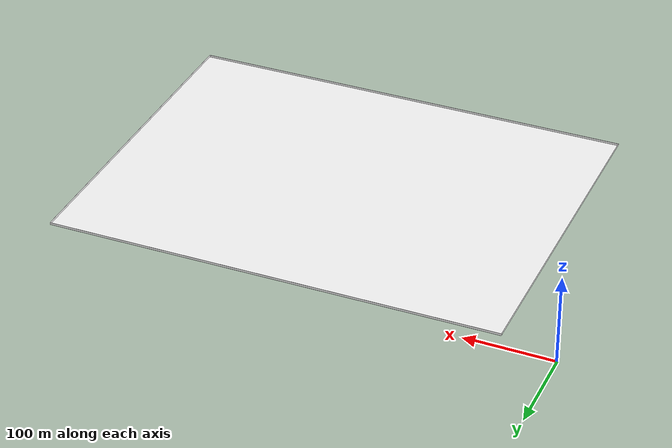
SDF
<sdf version="1.7">
  <world name="sim_world">
    <physics name="10ms" type="ode">
      <max_step_size>0.01</max_step_size>
      <real_time_factor>1.0</real_time_factor>
    </physics>
    <plugin filename="libignition-gazebo-physics-system.so" name="ignition::gazebo::systems::Physics">
    </plugin>
    <plugin filename="libignition-gazebo-user-commands-system.so" name="ignition::gazebo::systems::UserCommands">
    </plugin>
    <plugin filename="libignition-gazebo-scene-broadcaster-system.so" name="ignition::gazebo::systems::SceneBroadcaster">
    </plugin>
    <scene>
      <ambient>1 1 1</ambient>
      <background>0.8 0.8 0.8</background>
      <grid>false</grid>
    </scene>
    <gui fullscreen="0">
      <window>
        <width>1000</width>
        <height>845</height>
        <style material_theme="Light" material_primary="DeepOrange" material_accent="LightBlue" toolbar_color_light="#f3f3f3" toolbar_text_color_light="#111111" toolbar_color_dark="#414141" toolbar_text_color_dark="#f3f3f3" plugin_toolbar_color_light="#bbdefb" plugin_toolbar_text_color_light="#111111" plugin_toolbar_color_dark="#607d8b" plugin_toolbar_text_color_dark="#eeeeee" />
        <menus>
          <drawer default="false">
          </drawer>
        </menus>
      </window>
      <plugin filename="GzScene3D" name="3D View">
        <ignition-gui>
          <title>3D View</title>
          <property type="bool" key="showTitleBar">false</property>
          <property type="string" key="state">docked</property>
        </ignition-gui>
        <engine>ogre2</engine>
        <scene>scene</scene>
        <ambient_light>0.4 0.4 0.4</ambient_light>
        <background_color>0.8 0.8 0.8</background_color>
        <camera_pose>320.06100000000004 -232.9045 10 0 0.6 1.57</camera_pose>
      </plugin>
      <plugin filename="WorldControl" name="World control">
        <ignition-gui>
          <title>World control</title>
          <property type="bool" key="showTitleBar">false</property>
          <property type="bool" key="resizable">false</property>
          <property type="double" key="height">72</property>
          <property type="double" key="width">121</property>
          <property type="double" key="z">1</property>
          <property type="string" key="state">floating</property>
          <anchors target="3D View">
            <line own="left" target="left" />
            <line own="bottom" target="bottom" />
          </anchors>
        </ignition-gui>
        <play_pause>true</play_pause>
        <step>true</step>
        <start_paused>true</start_paused>
      </plugin>
      <plugin filename="WorldStats" name="World stats">
        <ignition-gui>
          <title>World stats</title>
          <property type="bool" key="showTitleBar">false</property>
          <property type="bool" key="resizable">false</property>
          <property type="double" key="height">110</property>
          <property type="double" key="width">290</property>
          <property type="double" key="z">1</property>
          <property type="string" key="state">floating</property>
          <anchors target="3D View">
            <line own="right" target="right" />
            <line own="bottom" target="bottom" />
          </anchors>
        </ignition-gui>
        <sim_time>true</sim_time>
        <real_time>true</real_time>
        <real_time_factor>true</real_time_factor>
        <iterations>true</iterations>
      </plugin>
      <plugin filename="TransformControl" name="Transform control">
        <ignition-gui>
          <title>Transform control</title>
          <anchors target="3D View">
            <line own="left" target="left" />
            <line own="top" target="top" />
          </anchors>
          <property key="resizable" type="bool">false</property>
          <property key="width" type="double">230</property>
          <property key="height" type="double">50</property>
          <property key="state" type="string">floating</property>
          <property key="showTitleBar" type="bool">false</property>
          <property key="cardBackground" type="string">#666666</property>
        </ignition-gui>
      </plugin>
      <plugin filename="Shapes" name="Shapes">
        <ignition-gui>
          <anchors target="Transform control">
            <line own="left" target="right" />
            <line own="top" target="top" />
          </anchors>
          <property key="resizable" type="bool">false</property>
          <property key="width" type="double">200</property>
          <property key="height" type="double">50</property>
          <property key="state" type="string">floating</property>
          <property key="showTitleBar" type="bool">false</property>
          <property key="cardBackground" type="string">#666666</property>
        </ignition-gui>
      </plugin>
      <plugin filename="ComponentInspector" name="Component inspector">
        <ignition-gui>
          <property type="bool" key="showTitleBar">false</property>
          <property type="string" key="state">docked</property>
        </ignition-gui>
      </plugin>
      <plugin filename="EntityTree" name="Entity tree">
        <ignition-gui>
          <property type="bool" key="showTitleBar">false</property>
          <property type="string" key="state">docked</property>
        </ignition-gui>
      </plugin>
      <plugin filename="toggle_charging" name="toggle_charging" />
      <plugin name="toggle_floors" filename="toggle_floors">
        <floor name="basic" model_name="test3_basic" />
      </plugin>
    </gui>
    <light type="directional" name="sun">
      <cast_shadows>true</cast_shadows>
      <pose>0 0 10 0 0 0</pose>
      <diffuse>1 1 1 1</diffuse>
      <specular>0.2 0.2 0.2 1</specular>
      <attenuation>
        <range>1000</range>
        <constant>0.09</constant>
        <linear>0.001</linear>
        <quadratic>0.001</quadratic>
      </attenuation>
      <direction>-0.5 0.1 -0.9</direction>
    </light>
    <include>
      <name>test3_basic</name>
      <uri>model://test3_basic</uri>
      <pose>0 0 0.0 0 0 0</pose>
    </include>
    <rmf_charger_waypoints name="charger_waypoints" />
  </world>
</sdf>

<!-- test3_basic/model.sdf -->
<sdf version="1.7">
  <model name="test3_basic">
    <static>true</static>
    <link name="floor_1">
      <visual name="visual">
        <geometry>
          <mesh>
            <uri>model://test3_basic/meshes/floor_1.obj</uri>
          </mesh>
        </geometry>
        <material>
          <diffuse>1.0 1.0 1.0</diffuse>
          <specular>0.1 0.1 0.1</specular>
          <pbr>
            <metal>
              <metalness>0.0</metalness>
              <albedo_map>model://test3_basic/meshes/blue_linoleum.png</albedo_map>
            </metal>
          </pbr>
          <script>
            <uri>model://test3_basic/meshes/</uri>
            <name>floor_1_Diffuse</name>
          </script>
        </material>
      </visual>
      <collision name="collision">
        <geometry>
          <mesh>
            <uri>model://test3_basic/meshes/floor_1.obj</uri>
          </mesh>
        </geometry>
        <surface>
          <contact>
            <collide_bitmask>0x01</collide_bitmask>
          </contact>
        </surface>
      </collision>
    </link>
    <link name="wall_1">
      <visual name="wall_1">
        <geometry>
          <mesh>
            <uri>model://test3_basic/meshes/wall_1.obj</uri>
          </mesh>
        </geometry>
        <transparency>0.0</transparency>
        <material>
          <diffuse>1.0 1.0 1.0</diffuse>
          <specular>0.1 0.1 0.1</specular>
          <pbr>
            <metal>
              <metalness>0.0</metalness>
              <albedo_map>model://test3_basic/meshes/default.png</albedo_map>
            </metal>
          </pbr>
          <script>
            <uri>model://test3_basic/meshes/</uri>
            <name>wall_1_Diffuse</name>
          </script>
        </material>
      </visual>
      <collision name="collision">
        <geometry>
          <mesh>
            <uri>model://test3_basic/meshes/wall_1.obj</uri>
          </mesh>
        </geometry>
        <surface>
          <contact>
            <collide_bitmask>0x01</collide_bitmask>
          </contact>
        </surface>
      </collision>
      <pose>64.80787966049928 -408.93912033950073 0 0 0 0</pose>
    </link>
  </model>
</sdf>
